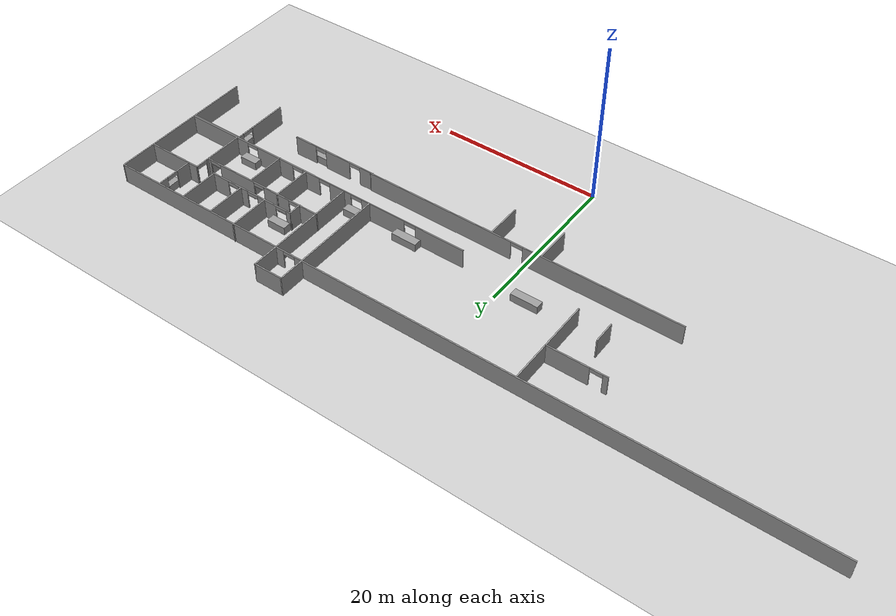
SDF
<sdf version="1.6">
 <world name="default">
  <model name="ground_plane">
   <static>1</static>
   <link name="link">
    <collision name="collision">
     <geometry><plane><normal>0 0 1</normal><size>100 100</size></plane></geometry>
     <surface><friction><ode><mu>100</mu><mu2>50</mu2></ode></friction></surface>
    </collision>
    <visual name="visual">
     <cast_shadows>0</cast_shadows>
     <geometry><plane><normal>0 0 1</normal><size>100 100</size></plane></geometry>
     <material>
      <script><uri>file://media/materials/scripts/gazebo.material</uri><name>Gazebo/Grey</name></script>
     </material>
    </visual>
   </link>
  </model>
  <model name="aule_N">
   <pose>0.1887 -1.4289 0 0 -0 0</pose>
   <link name="Wall_103">
    <pose>26.3919 15.3997 0 0 -0 3.14159</pose>
    <visual name="Wall_103_Visual_0">
     <pose>-4.01282 0 1.25 0 -0 0</pose>
     <geometry><box><size>2.97436 0.15 2.5</size></box></geometry>
     <material>
      <script><uri>file://media/materials/scripts/gazebo.material</uri><name>Gazebo/Grey</name></script>
      <ambient>1 1 1 1</ambient>
     </material>
    </visual>
    <collision name="Wall_103_Collision_0">
     <geometry><box><size>2.97436 0.15 2.5</size></box></geometry>
     <pose>-4.01282 0 1.25 0 -0 0</pose>
    </collision>
    <visual name="Wall_103_Visual_1">
     <pose>0.712222 0 1.25 0 -0 0</pose>
     <geometry><box><size>3.47573 0.15 2.5</size></box></geometry>
     <material>
      <script><uri>file://media/materials/scripts/gazebo.material</uri><name>Gazebo/Grey</name></script>
      <ambient>1 1 1 1</ambient>
     </material>
    </visual>
    <collision name="Wall_103_Collision_1">
     <geometry><box><size>3.47573 0.15 2.5</size></box></geometry>
     <pose>0.712222 0 1.25 0 -0 0</pose>
    </collision>
    <visual name="Wall_103_Visual_2">
     <pose>4.72504 0 1.25 0 -0 0</pose>
     <geometry><box><size>1.54991 0.15 2.5</size></box></geometry>
     <material>
      <script><uri>file://media/materials/scripts/gazebo.material</uri><name>Gazebo/Grey</name></script>
      <ambient>1 1 1 1</ambient>
     </material>
    </visual>
    <collision name="Wall_103_Collision_2">
     <geometry><box><size>1.54991 0.15 2.5</size></box></geometry>
     <pose>4.72504 0 1.25 0 -0 0</pose>
    </collision>
    <visual name="Wall_103_Visual_3">
     <pose>-1.77564 0 2.25 0 -0 0</pose>
     <geometry><box><size>1.5 0.15 0.5</size></box></geometry>
     <material>
      <script><uri>file://media/materials/scripts/gazebo.material</uri><name>Gazebo/Grey</name></script>
      <ambient>1 1 1 1</ambient>
     </material>
    </visual>
    <collision name="Wall_103_Collision_3">
     <geometry><box><size>1.5 0.15 0.5</size></box></geometry>
     <pose>-1.77564 0 2.25 0 -0 0</pose>
    </collision>
    <visual name="Wall_103_Visual_4">
     <pose>3.20009 0 2.25 0 -0 0</pose>
     <geometry><box><size>1.5 0.15 0.5</size></box></geometry>
     <material>
      <script><uri>file://media/materials/scripts/gazebo.material</uri><name>Gazebo/Grey</name></script>
      <ambient>1 1 1 1</ambient>
     </material>
    </visual>
    <collision name="Wall_103_Collision_4">
     <geometry><box><size>1.5 0.15 0.5</size></box></geometry>
     <pose>3.20009 0 2.25 0 -0 0</pose>
    </collision>
   </link>
   <link name="Wall_104">
    <collision name="Wall_104_Collision">
     <geometry><box><size>0.5 0.15 2.5</size></box></geometry>
     <pose>0 0 1.25 0 -0 0</pose>
    </collision>
    <visual name="Wall_104_Visual">
     <pose>0 0 1.25 0 -0 0</pose>
     <geometry><box><size>0.5 0.15 2.5</size></box></geometry>
     <material>
      <script><uri>file://media/materials/scripts/gazebo.material</uri><name>Gazebo/Grey</name></script>
      <ambient>1 1 1 1</ambient>
     </material>
    </visual>
    <pose>20.7919 15.3997 0 0 -0 3.14159</pose>
   </link>
   <link name="Wall_119">
    <pose>24.6226 19.6001 0 0 -0 0</pose>
    <visual name="Wall_119_Visual_0">
     <pose>-16.4435 0 1.25 0 -0 0</pose>
     <geometry><box><size>6.36296 0.15 2.5</size></box></geometry>
     <material>
      <script><uri>file://media/materials/scripts/gazebo.material</uri><name>Gazebo/Grey</name></script>
      <ambient>1 1 1 1</ambient>
     </material>
    </visual>
    <collision name="Wall_119_Collision_0">
     <geometry><box><size>6.36296 0.15 2.5</size></box></geometry>
     <pose>-16.4435 0 1.25 0 -0 0</pose>
    </collision>
    <visual name="Wall_119_Visual_1">
     <pose>-8.80227 0 1.25 0 -0 0</pose>
     <geometry><box><size>5.91956 0.15 2.5</size></box></geometry>
     <material>
      <script><uri>file://media/materials/scripts/gazebo.material</uri><name>Gazebo/Grey</name></script>
      <ambient>1 1 1 1</ambient>
     </material>
    </visual>
    <collision name="Wall_119_Collision_1">
     <geometry><box><size>5.91956 0.15 2.5</size></box></geometry>
     <pose>-8.80227 0 1.25 0 -0 0</pose>
    </collision>
    <visual name="Wall_119_Visual_2">
     <pose>-2.80072 0 1.25 0 -0 0</pose>
     <geometry><box><size>3.08352 0.15 2.5</size></box></geometry>
     <material>
      <script><uri>file://media/materials/scripts/gazebo.material</uri><name>Gazebo/Grey</name></script>
      <ambient>1 1 1 1</ambient>
     </material>
    </visual>
    <collision name="Wall_119_Collision_2">
     <geometry><box><size>3.08352 0.15 2.5</size></box></geometry>
     <pose>-2.80072 0 1.25 0 -0 0</pose>
    </collision>
    <visual name="Wall_119_Visual_3">
     <pose>1.4683 0 1.25 0 -0 0</pose>
     <geometry><box><size>2.45453 0.15 2.5</size></box></geometry>
     <material>
      <script><uri>file://media/materials/scripts/gazebo.material</uri><name>Gazebo/Grey</name></script>
      <ambient>1 1 1 1</ambient>
     </material>
    </visual>
    <collision name="Wall_119_Collision_3">
     <geometry><box><size>2.45453 0.15 2.5</size></box></geometry>
     <pose>1.4683 0 1.25 0 -0 0</pose>
    </collision>
    <visual name="Wall_119_Visual_4">
     <pose>6.88834 0 1.25 0 -0 0</pose>
     <geometry><box><size>5.38554 0.15 2.5</size></box></geometry>
     <material>
      <script><uri>file://media/materials/scripts/gazebo.material</uri><name>Gazebo/Grey</name></script>
      <ambient>1 1 1 1</ambient>
     </material>
    </visual>
    <collision name="Wall_119_Collision_4">
     <geometry><box><size>5.38554 0.15 2.5</size></box></geometry>
     <pose>6.88834 0 1.25 0 -0 0</pose>
    </collision>
    <visual name="Wall_119_Visual_5">
     <pose>15.3531 0 1.25 0 -0 0</pose>
     <geometry><box><size>8.54389 0.15 2.5</size></box></geometry>
     <material>
      <script><uri>file://media/materials/scripts/gazebo.material</uri><name>Gazebo/Grey</name></script>
      <ambient>1 1 1 1</ambient>
     </material>
    </visual>
    <collision name="Wall_119_Collision_5">
     <geometry><box><size>8.54389 0.15 2.5</size></box></geometry>
     <pose>15.3531 0 1.25 0 -0 0</pose>
    </collision>
    <visual name="Wall_119_Visual_6">
     <pose>-12.512 0 2.25 0 -0 0</pose>
     <geometry><box><size>1.5 0.15 0.5</size></box></geometry>
     <material>
      <script><uri>file://media/materials/scripts/gazebo.material</uri><name>Gazebo/Grey</name></script>
      <ambient>1 1 1 1</ambient>
     </material>
    </visual>
    <collision name="Wall_119_Collision_6">
     <geometry><box><size>1.5 0.15 0.5</size></box></geometry>
     <pose>-12.512 0 2.25 0 -0 0</pose>
    </collision>
    <visual name="Wall_119_Visual_7">
     <pose>-5.09248 0 2.25 0 -0 0</pose>
     <geometry><box><size>1.5 0.15 0.5</size></box></geometry>
     <material>
      <script><uri>file://media/materials/scripts/gazebo.material</uri><name>Gazebo/Grey</name></script>
      <ambient>1 1 1 1</ambient>
     </material>
    </visual>
    <collision name="Wall_119_Collision_7">
     <geometry><box><size>1.5 0.15 0.5</size></box></geometry>
     <pose>-5.09248 0 2.25 0 -0 0</pose>
    </collision>
    <visual name="Wall_119_Visual_8">
     <pose>-0.508963 0 2.25 0 -0 0</pose>
     <geometry><box><size>1.5 0.15 0.5</size></box></geometry>
     <material>
      <script><uri>file://media/materials/scripts/gazebo.material</uri><name>Gazebo/Grey</name></script>
      <ambient>1 1 1 1</ambient>
     </material>
    </visual>
    <collision name="Wall_119_Collision_8">
     <geometry><box><size>1.5 0.15 0.5</size></box></geometry>
     <pose>-0.508963 0 2.25 0 -0 0</pose>
    </collision>
    <visual name="Wall_119_Visual_9">
     <pose>3.44557 0 2.25 0 -0 0</pose>
     <geometry><box><size>1.5 0.15 0.5</size></box></geometry>
     <material>
      <script><uri>file://media/materials/scripts/gazebo.material</uri><name>Gazebo/Grey</name></script>
      <ambient>1 1 1 1</ambient>
     </material>
    </visual>
    <collision name="Wall_119_Collision_9">
     <geometry><box><size>1.5 0.15 0.5</size></box></geometry>
     <pose>3.44557 0 2.25 0 -0 0</pose>
    </collision>
    <visual name="Wall_119_Visual_10">
     <pose>10.3311 0 2.25 0 -0 0</pose>
     <geometry><box><size>1.5 0.15 0.5</size></box></geometry>
     <material>
      <script><uri>file://media/materials/scripts/gazebo.material</uri><name>Gazebo/Grey</name></script>
      <ambient>1 1 1 1</ambient>
     </material>
    </visual>
    <collision name="Wall_119_Collision_10">
     <geometry><box><size>1.5 0.15 0.5</size></box></geometry>
     <pose>10.3311 0 2.25 0 -0 0</pose>
    </collision>
   </link>
   <link name="Wall_133">
    <collision name="Wall_133_Collision">
     <geometry><box><size>2.75 0.15 2.5</size></box></geometry>
     <pose>0 0 1.25 0 -0 0</pose>
    </collision>
    <visual name="Wall_133_Visual">
     <pose>0 0 1.25 0 -0 0</pose>
     <geometry><box><size>2.75 0.15 2.5</size></box></geometry>
     <material>
      <script><uri>file://media/materials/scripts/gazebo.material</uri><name>Gazebo/Grey</name></script>
      <ambient>1 1 1 1</ambient>
     </material>
    </visual>
    <pose>-13.0958 20.8964 0 0 0 -1.5708</pose>
   </link>
   <link name="Wall_135">
    <pose>-12.9035 25.7612 0 0 -0 0</pose>
    <visual name="Wall_135_Visual_0">
     <pose>-3.3201 0 1.25 0 -0 0</pose>
     <geometry><box><size>0.60979 0.15 2.5</size></box></geometry>
     <material>
      <script><uri>file://media/materials/scripts/gazebo.material</uri><name>Gazebo/Grey</name></script>
      <ambient>1 1 1 1</ambient>
     </material>
    </visual>
    <collision name="Wall_135_Collision_0">
     <geometry><box><size>0.60979 0.15 2.5</size></box></geometry>
     <pose>-3.3201 0 1.25 0 -0 0</pose>
    </collision>
    <visual name="Wall_135_Visual_1">
     <pose>1.05489 0 1.25 0 -0 0</pose>
     <geometry><box><size>5.14021 0.15 2.5</size></box></geometry>
     <material>
      <script><uri>file://media/materials/scripts/gazebo.material</uri><name>Gazebo/Grey</name></script>
      <ambient>1 1 1 1</ambient>
     </material>
    </visual>
    <collision name="Wall_135_Collision_1">
     <geometry><box><size>5.14021 0.15 2.5</size></box></geometry>
     <pose>1.05489 0 1.25 0 -0 0</pose>
    </collision>
    <visual name="Wall_135_Visual_2">
     <pose>-2.26521 0 2.25 0 -0 0</pose>
     <geometry><box><size>1.5 0.15 0.5</size></box></geometry>
     <material>
      <script><uri>file://media/materials/scripts/gazebo.material</uri><name>Gazebo/Grey</name></script>
      <ambient>1 1 1 1</ambient>
     </material>
    </visual>
    <collision name="Wall_135_Collision_2">
     <geometry><box><size>1.5 0.15 0.5</size></box></geometry>
     <pose>-2.26521 0 2.25 0 -0 0</pose>
    </collision>
   </link>
   <link name="Wall_136">
    <collision name="Wall_136_Collision">
     <geometry><box><size>5.25 0.15 2.5</size></box></geometry>
     <pose>0 0 1.25 0 -0 0</pose>
    </collision>
    <visual name="Wall_136_Visual">
     <pose>0 0 1.25 0 -0 0</pose>
     <geometry><box><size>5.25 0.15 2.5</size></box></geometry>
     <material>
      <script><uri>file://media/materials/scripts/gazebo.material</uri><name>Gazebo/Grey</name></script>
      <ambient>1 1 1 1</ambient>
     </material>
    </visual>
    <pose>-9.35351 28.3112 0 0 -0 1.5708</pose>
   </link>
   <link name="Wall_138">
    <collision name="Wall_138_Collision">
     <geometry><box><size>6.25 0.15 2.5</size></box></geometry>
     <pose>0 0 1.25 0 -0 0</pose>
    </collision>
    <visual name="Wall_138_Visual">
     <pose>0 0 1.25 0 -0 0</pose>
     <geometry><box><size>6.25 0.15 2.5</size></box></geometry>
     <material>
      <script><uri>file://media/materials/scripts/gazebo.material</uri><name>Gazebo/Grey</name></script>
      <ambient>1 1 1 1</ambient>
     </material>
    </visual>
    <pose>-9.35351 22.7112 0 0 0 -1.5708</pose>
   </link>
   <link name="Wall_142">
    <collision name="Wall_142_Collision">
     <geometry><box><size>14.75 0.15 2.5</size></box></geometry>
     <pose>0 0 1.25 0 -0 0</pose>
    </collision>
    <visual name="Wall_142_Visual">
     <pose>0 0 1.25 0 -0 0</pose>
     <geometry><box><size>14.75 0.15 2.5</size></box></geometry>
     <material>
      <script><uri>file://media/materials/scripts/gazebo.material</uri><name>Gazebo/Grey</name></script>
      <ambient>1 1 1 1</ambient>
     </material>
    </visual>
    <pose>17.6842 26.9006 0 0 -0 1.5708</pose>
   </link>
   <link name="Wall_143">
    <collision name="Wall_143_Collision">
     <geometry><box><size>3.75 0.15 2.5</size></box></geometry>
     <pose>0 0 1.25 0 -0 0</pose>
    </collision>
    <visual name="Wall_143_Visual">
     <pose>0 0 1.25 0 -0 0</pose>
     <geometry><box><size>3.75 0.15 2.5</size></box></geometry>
     <material>
      <script><uri>file://media/materials/scripts/gazebo.material</uri><name>Gazebo/Grey</name></script>
      <ambient>1 1 1 1</ambient>
     </material>
    </visual>
    <pose>19.4842 34.2006 0 0 -0 0</pose>
   </link>
   <link name="Wall_144">
    <collision name="Wall_144_Collision">
     <geometry><box><size>14.75 0.15 2.5</size></box></geometry>
     <pose>0 0 1.25 0 -0 0</pose>
    </collision>
    <visual name="Wall_144_Visual">
     <pose>0 0 1.25 0 -0 0</pose>
     <geometry><box><size>14.75 0.15 2.5</size></box></geometry>
     <material>
      <script><uri>file://media/materials/scripts/gazebo.material</uri><name>Gazebo/Grey</name></script>
      <ambient>1 1 1 1</ambient>
     </material>
    </visual>
    <pose>21.2842 26.9006 0 0 0 -1.5708</pose>
   </link>
   <link name="Wall_147">
    <collision name="Wall_147_Collision">
     <geometry><box><size>4.5 0.15 2.5</size></box></geometry>
     <pose>0 0 1.25 0 -0 0</pose>
    </collision>
    <visual name="Wall_147_Visual">
     <pose>0 0 1.25 0 -0 0</pose>
     <geometry><box><size>4.5 0.15 2.5</size></box></geometry>
     <material>
      <script><uri>file://media/materials/scripts/gazebo.material</uri><name>Gazebo/Grey</name></script>
      <ambient>1 1 1 1</ambient>
     </material>
    </visual>
    <pose>-2.1259 13.1481 0 0 0 -1.5708</pose>
   </link>
   <link name="Wall_149">
    <collision name="Wall_149_Collision">
     <geometry><box><size>4.5 0.15 2.5</size></box></geometry>
     <pose>0 0 1.25 0 -0 0</pose>
    </collision>
    <visual name="Wall_149_Visual">
     <pose>0 0 1.25 0 -0 0</pose>
     <geometry><box><size>4.5 0.15 2.5</size></box></geometry>
     <material>
      <script><uri>file://media/materials/scripts/gazebo.material</uri><name>Gazebo/Grey</name></script>
      <ambient>1 1 1 1</ambient>
     </material>
    </visual>
    <pose>4.2241 13.1481 0 0 -0 1.5708</pose>
   </link>
   <link name="Wall_151">
    <pose>37.2203 15.8955 0 0 -0 1.5708</pose>
    <visual name="Wall_151_Visual_0">
     <pose>-1.12447 0 1.25 0 -0 0</pose>
     <geometry><box><size>5.00105 0.15 2.5</size></box></geometry>
     <material>
      <script><uri>file://media/materials/scripts/gazebo.material</uri><name>Gazebo/Grey</name></script>
      <ambient>1 1 1 1</ambient>
     </material>
    </visual>
    <collision name="Wall_151_Collision_0">
     <geometry><box><size>5.00105 0.15 2.5</size></box></geometry>
     <pose>-1.12447 0 1.25 0 -0 0</pose>
    </collision>
    <visual name="Wall_151_Visual_1">
     <pose>3.25053 0 1.25 0 -0 0</pose>
     <geometry><box><size>0.748949 0.15 2.5</size></box></geometry>
     <material>
      <script><uri>file://media/materials/scripts/gazebo.material</uri><name>Gazebo/Grey</name></script>
      <ambient>1 1 1 1</ambient>
     </material>
    </visual>
    <collision name="Wall_151_Collision_1">
     <geometry><box><size>0.748949 0.15 2.5</size></box></geometry>
     <pose>3.25053 0 1.25 0 -0 0</pose>
    </collision>
    <visual name="Wall_151_Visual_2">
     <pose>2.12605 0 2.25 0 -0 0</pose>
     <geometry><box><size>1.5 0.15 0.5</size></box></geometry>
     <material>
      <script><uri>file://media/materials/scripts/gazebo.material</uri><name>Gazebo/Grey</name></script>
      <ambient>1 1 1 1</ambient>
     </material>
    </visual>
    <collision name="Wall_151_Collision_2">
     <geometry><box><size>1.5 0.15 0.5</size></box></geometry>
     <pose>2.12605 0 2.25 0 -0 0</pose>
    </collision>
   </link>
   <link name="Wall_152">
    <collision name="Wall_152_Collision">
     <geometry><box><size>7.25 0.15 2.5</size></box></geometry>
     <pose>0 0 1.25 0 -0 0</pose>
    </collision>
    <visual name="Wall_152_Visual">
     <pose>0 0 1.25 0 -0 0</pose>
     <geometry><box><size>7.25 0.15 2.5</size></box></geometry>
     <material>
      <script><uri>file://media/materials/scripts/gazebo.material</uri><name>Gazebo/Grey</name></script>
      <ambient>1 1 1 1</ambient>
     </material>
    </visual>
    <pose>40.7703 19.4455 0 0 -0 0</pose>
   </link>
   <link name="Wall_154">
    <pose>29.3256 24.4418 0 0 -0 0</pose>
    <visual name="Wall_154_Visual_0">
     <pose>-6.88088 0 1.25 0 -0 0</pose>
     <geometry><box><size>2.48824 0.15 2.5</size></box></geometry>
     <material>
      <script><uri>file://media/materials/scripts/gazebo.material</uri><name>Gazebo/Grey</name></script>
      <ambient>1 1 1 1</ambient>
     </material>
    </visual>
    <collision name="Wall_154_Collision_0">
     <geometry><box><size>2.48824 0.15 2.5</size></box></geometry>
     <pose>-6.88088 0 1.25 0 -0 0</pose>
    </collision>
    <visual name="Wall_154_Visual_1">
     <pose>-2.30449 0 1.25 0 -0 0</pose>
     <geometry><box><size>3.66454 0.15 2.5</size></box></geometry>
     <material>
      <script><uri>file://media/materials/scripts/gazebo.material</uri><name>Gazebo/Grey</name></script>
      <ambient>1 1 1 1</ambient>
     </material>
    </visual>
    <collision name="Wall_154_Collision_1">
     <geometry><box><size>3.66454 0.15 2.5</size></box></geometry>
     <pose>-2.30449 0 1.25 0 -0 0</pose>
    </collision>
    <visual name="Wall_154_Visual_2">
     <pose>3.58098 0 1.25 0 -0 0</pose>
     <geometry><box><size>5.10639 0.15 2.5</size></box></geometry>
     <material>
      <script><uri>file://media/materials/scripts/gazebo.material</uri><name>Gazebo/Grey</name></script>
      <ambient>1 1 1 1</ambient>
     </material>
    </visual>
    <collision name="Wall_154_Collision_2">
     <geometry><box><size>5.10639 0.15 2.5</size></box></geometry>
     <pose>3.58098 0 1.25 0 -0 0</pose>
    </collision>
    <visual name="Wall_154_Visual_3">
     <pose>7.87959 0 1.25 0 -0 0</pose>
     <geometry><box><size>0.490824 0.15 2.5</size></box></geometry>
     <material>
      <script><uri>file://media/materials/scripts/gazebo.material</uri><name>Gazebo/Grey</name></script>
      <ambient>1 1 1 1</ambient>
     </material>
    </visual>
    <collision name="Wall_154_Collision_3">
     <geometry><box><size>0.490824 0.15 2.5</size></box></geometry>
     <pose>7.87959 0 1.25 0 -0 0</pose>
    </collision>
    <visual name="Wall_154_Visual_4">
     <pose>-4.88676 0 2.25 0 -0 0</pose>
     <geometry><box><size>1.5 0.15 0.5</size></box></geometry>
     <material>
      <script><uri>file://media/materials/scripts/gazebo.material</uri><name>Gazebo/Grey</name></script>
      <ambient>1 1 1 1</ambient>
     </material>
    </visual>
    <collision name="Wall_154_Collision_4">
     <geometry><box><size>1.5 0.15 0.5</size></box></geometry>
     <pose>-4.88676 0 2.25 0 -0 0</pose>
    </collision>
    <visual name="Wall_154_Visual_5">
     <pose>0.277782 0 2.25 0 -0 0</pose>
     <geometry><box><size>1.5 0.15 0.5</size></box></geometry>
     <material>
      <script><uri>file://media/materials/scripts/gazebo.material</uri><name>Gazebo/Grey</name></script>
      <ambient>1 1 1 1</ambient>
     </material>
    </visual>
    <collision name="Wall_154_Collision_5">
     <geometry><box><size>1.5 0.15 0.5</size></box></geometry>
     <pose>0.277782 0 2.25 0 -0 0</pose>
    </collision>
    <visual name="Wall_154_Visual_6">
     <pose>6.88418 0 2.25 0 -0 0</pose>
     <geometry><box><size>1.5 0.15 0.5</size></box></geometry>
     <material>
      <script><uri>file://media/materials/scripts/gazebo.material</uri><name>Gazebo/Grey</name></script>
      <ambient>1 1 1 1</ambient>
     </material>
    </visual>
    <collision name="Wall_154_Collision_6">
     <geometry><box><size>1.5 0.15 0.5</size></box></geometry>
     <pose>6.88418 0 2.25 0 -0 0</pose>
    </collision>
   </link>
   <link name="Wall_155">
    <collision name="Wall_155_Collision">
     <geometry><box><size>5 0.15 2.5</size></box></geometry>
     <pose>0 0 1.25 0 -0 0</pose>
    </collision>
    <visual name="Wall_155_Visual">
     <pose>0 0 1.25 0 -0 0</pose>
     <geometry><box><size>5 0.15 2.5</size></box></geometry>
     <material>
      <script><uri>file://media/materials/scripts/gazebo.material</uri><name>Gazebo/Grey</name></script>
      <ambient>1 1 1 1</ambient>
     </material>
    </visual>
    <pose>37.3756 22.0168 0 0 0 -1.5708</pose>
   </link>
   <link name="Wall_157">
    <collision name="Wall_157_Collision">
     <geometry><box><size>5 0.15 2.5</size></box></geometry>
     <pose>0 0 1.25 0 -0 0</pose>
    </collision>
    <visual name="Wall_157_Visual">
     <pose>0 0 1.25 0 -0 0</pose>
     <geometry><box><size>5 0.15 2.5</size></box></geometry>
     <material>
      <script><uri>file://media/materials/scripts/gazebo.material</uri><name>Gazebo/Grey</name></script>
      <ambient>1 1 1 1</ambient>
     </material>
    </visual>
    <pose>26.8585 22.0634 0 0 0 -1.5708</pose>
   </link>
   <link name="Wall_159">
    <collision name="Wall_159_Collision">
     <geometry><box><size>5 0.15 2.5</size></box></geometry>
     <pose>0 0 1.25 0 -0 0</pose>
    </collision>
    <visual name="Wall_159_Visual">
     <pose>0 0 1.25 0 -0 0</pose>
     <geometry><box><size>5 0.15 2.5</size></box></geometry>
     <material>
      <script><uri>file://media/materials/scripts/gazebo.material</uri><name>Gazebo/Grey</name></script>
      <ambient>1 1 1 1</ambient>
     </material>
    </visual>
    <pose>30.8596 21.9703 0 0 0 -1.5708</pose>
   </link>
   <link name="Wall_161">
    <pose>37.3756 25.3668 0 0 -0 1.5708</pose>
    <visual name="Wall_161_Visual_0">
     <pose>-0.779213 0 1.25 0 -0 0</pose>
     <geometry><box><size>0.441574 0.15 2.5</size></box></geometry>
     <material>
      <script><uri>file://media/materials/scripts/gazebo.material</uri><name>Gazebo/Grey</name></script>
      <ambient>1 1 1 1</ambient>
     </material>
    </visual>
    <collision name="Wall_161_Collision_0">
     <geometry><box><size>0.441574 0.15 2.5</size></box></geometry>
     <pose>-0.779213 0 1.25 0 -0 0</pose>
    </collision>
    <visual name="Wall_161_Visual_1">
     <pose>0.970787 0 1.25 0 -0 0</pose>
     <geometry><box><size>0.058426 0.15 2.5</size></box></geometry>
     <material>
      <script><uri>file://media/materials/scripts/gazebo.material</uri><name>Gazebo/Grey</name></script>
      <ambient>1 1 1 1</ambient>
     </material>
    </visual>
    <collision name="Wall_161_Collision_1">
     <geometry><box><size>0.058426 0.15 2.5</size></box></geometry>
     <pose>0.970787 0 1.25 0 -0 0</pose>
    </collision>
    <visual name="Wall_161_Visual_2">
     <pose>0.191574 0 2.25 0 -0 0</pose>
     <geometry><box><size>1.5 0.15 0.5</size></box></geometry>
     <material>
      <script><uri>file://media/materials/scripts/gazebo.material</uri><name>Gazebo/Grey</name></script>
      <ambient>1 1 1 1</ambient>
     </material>
    </visual>
    <collision name="Wall_161_Collision_2">
     <geometry><box><size>1.5 0.15 0.5</size></box></geometry>
     <pose>0.191574 0 2.25 0 -0 0</pose>
    </collision>
   </link>
   <link name="Wall_172">
    <collision name="Wall_172_Collision">
     <geometry><box><size>1.75 0.15 2.5</size></box></geometry>
     <pose>0 0 1.25 0 -0 0</pose>
    </collision>
    <visual name="Wall_172_Visual">
     <pose>0 0 1.25 0 -0 0</pose>
     <geometry><box><size>1.75 0.15 2.5</size></box></geometry>
     <material>
      <script><uri>file://media/materials/scripts/gazebo.material</uri><name>Gazebo/Grey</name></script>
      <ambient>1 1 1 1</ambient>
     </material>
    </visual>
    <pose>23.6484 25.1953 0 0 -0 1.5708</pose>
   </link>
   <link name="Wall_173">
    <pose>29.3234 25.9953 0 0 -0 0</pose>
    <visual name="Wall_173_Visual_0">
     <pose>-5.43624 0 1.25 0 -0 0</pose>
     <geometry><box><size>0.627523 0.15 2.5</size></box></geometry>
     <material>
      <script><uri>file://media/materials/scripts/gazebo.material</uri><name>Gazebo/Grey</name></script>
      <ambient>1 1 1 1</ambient>
     </material>
    </visual>
    <collision name="Wall_173_Collision_0">
     <geometry><box><size>0.627523 0.15 2.5</size></box></geometry>
     <pose>-5.43624 0 1.25 0 -0 0</pose>
    </collision>
    <visual name="Wall_173_Visual_1">
     <pose>-2.27883 0 1.25 0 -0 0</pose>
     <geometry><box><size>2.6873 0.15 2.5</size></box></geometry>
     <material>
      <script><uri>file://media/materials/scripts/gazebo.material</uri><name>Gazebo/Grey</name></script>
      <ambient>1 1 1 1</ambient>
     </material>
    </visual>
    <collision name="Wall_173_Collision_1">
     <geometry><box><size>2.6873 0.15 2.5</size></box></geometry>
     <pose>-2.27883 0 1.25 0 -0 0</pose>
    </collision>
    <visual name="Wall_173_Visual_2">
     <pose>1.25706 0 1.25 0 -0 0</pose>
     <geometry><box><size>1.38448 0.15 2.5</size></box></geometry>
     <material>
      <script><uri>file://media/materials/scripts/gazebo.material</uri><name>Gazebo/Grey</name></script>
      <ambient>1 1 1 1</ambient>
     </material>
    </visual>
    <collision name="Wall_173_Collision_2">
     <geometry><box><size>1.38448 0.15 2.5</size></box></geometry>
     <pose>1.25706 0 1.25 0 -0 0</pose>
    </collision>
    <visual name="Wall_173_Visual_3">
     <pose>4.59965 0 1.25 0 -0 0</pose>
     <geometry><box><size>2.3007 0.15 2.5</size></box></geometry>
     <material>
      <script><uri>file://media/materials/scripts/gazebo.material</uri><name>Gazebo/Grey</name></script>
      <ambient>1 1 1 1</ambient>
     </material>
    </visual>
    <collision name="Wall_173_Collision_3">
     <geometry><box><size>2.3007 0.15 2.5</size></box></geometry>
     <pose>4.59965 0 1.25 0 -0 0</pose>
    </collision>
    <visual name="Wall_173_Visual_4">
     <pose>-4.37248 0 2.25 0 -0 0</pose>
     <geometry><box><size>1.5 0.15 0.5</size></box></geometry>
     <material>
      <script><uri>file://media/materials/scripts/gazebo.material</uri><name>Gazebo/Grey</name></script>
      <ambient>1 1 1 1</ambient>
     </material>
    </visual>
    <collision name="Wall_173_Collision_4">
     <geometry><box><size>1.5 0.15 0.5</size></box></geometry>
     <pose>-4.37248 0 2.25 0 -0 0</pose>
    </collision>
    <visual name="Wall_173_Visual_5">
     <pose>-0.185179 0 2.25 0 -0 0</pose>
     <geometry><box><size>1.5 0.15 0.5</size></box></geometry>
     <material>
      <script><uri>file://media/materials/scripts/gazebo.material</uri><name>Gazebo/Grey</name></script>
      <ambient>1 1 1 1</ambient>
     </material>
    </visual>
    <collision name="Wall_173_Collision_5">
     <geometry><box><size>1.5 0.15 0.5</size></box></geometry>
     <pose>-0.185179 0 2.25 0 -0 0</pose>
    </collision>
    <visual name="Wall_173_Visual_6">
     <pose>2.6993 0 2.25 0 -0 0</pose>
     <geometry><box><size>1.5 0.15 0.5</size></box></geometry>
     <material>
      <script><uri>file://media/materials/scripts/gazebo.material</uri><name>Gazebo/Grey</name></script>
      <ambient>1 1 1 1</ambient>
     </material>
    </visual>
    <collision name="Wall_173_Collision_6">
     <geometry><box><size>1.5 0.15 0.5</size></box></geometry>
     <pose>2.6993 0 2.25 0 -0 0</pose>
    </collision>
   </link>
   <link name="Wall_174">
    <collision name="Wall_174_Collision">
     <geometry><box><size>5 0.15 2.5</size></box></geometry>
     <pose>0 0 1.25 0 -0 0</pose>
    </collision>
    <visual name="Wall_174_Visual">
     <pose>0 0 1.25 0 -0 0</pose>
     <geometry><box><size>5 0.15 2.5</size></box></geometry>
     <material>
      <script><uri>file://media/materials/scripts/gazebo.material</uri><name>Gazebo/Grey</name></script>
      <ambient>1 1 1 1</ambient>
     </material>
    </visual>
    <pose>34.9984 28.4203 0 0 -0 1.5708</pose>
   </link>
   <link name="Wall_176">
    <collision name="Wall_176_Collision">
     <geometry><box><size>5.25 0.15 2.5</size></box></geometry>
     <pose>0 0 1.25 0 -0 0</pose>
    </collision>
    <visual name="Wall_176_Visual">
     <pose>0 0 1.25 0 -0 0</pose>
     <geometry><box><size>5.25 0.15 2.5</size></box></geometry>
     <material>
      <script><uri>file://media/materials/scripts/gazebo.material</uri><name>Gazebo/Grey</name></script>
      <ambient>1 1 1 1</ambient>
     </material>
    </visual>
    <pose>27.3703 28.4806 0 0 -0 1.5708</pose>
   </link>
   <link name="Wall_178">
    <collision name="Wall_178_Collision">
     <geometry><box><size>5 0.15 2.5</size></box></geometry>
     <pose>0 0 1.25 0 -0 0</pose>
    </collision>
    <visual name="Wall_178_Visual">
     <pose>0 0 1.25 0 -0 0</pose>
     <geometry><box><size>5 0.15 2.5</size></box></geometry>
     <material>
      <script><uri>file://media/materials/scripts/gazebo.material</uri><name>Gazebo/Grey</name></script>
      <ambient>1 1 1 1</ambient>
     </material>
    </visual>
    <pose>30.8596 28.4952 0 0 -0 1.5708</pose>
   </link>
   <link name="Wall_182">
    <collision name="Wall_182_Collision">
     <geometry><box><size>7 0.15 2.5</size></box></geometry>
     <pose>0 0 1.25 0 -0 0</pose>
    </collision>
    <visual name="Wall_182_Visual">
     <pose>0 0 1.25 0 -0 0</pose>
     <geometry><box><size>7 0.15 2.5</size></box></geometry>
     <material>
      <script><uri>file://media/materials/scripts/gazebo.material</uri><name>Gazebo/Grey</name></script>
      <ambient>1 1 1 1</ambient>
     </material>
    </visual>
    <pose>40.8006 26.2918 0 0 -0 0</pose>
   </link>
   <link name="Wall_184">
    <pose>38.6756 28.6028 0 0 -0 1.5708</pose>
    <visual name="Wall_184_Visual_0">
     <pose>-1.38657 0 1.25 0 -0 0</pose>
     <geometry><box><size>1.97686 0.15 2.5</size></box></geometry>
     <material>
      <script><uri>file://media/materials/scripts/gazebo.material</uri><name>Gazebo/Grey</name></script>
      <ambient>1 1 1 1</ambient>
     </material>
    </visual>
    <collision name="Wall_184_Collision_0">
     <geometry><box><size>1.97686 0.15 2.5</size></box></geometry>
     <pose>-1.38657 0 1.25 0 -0 0</pose>
    </collision>
    <visual name="Wall_184_Visual_1">
     <pose>1.73843 0 1.25 0 -0 0</pose>
     <geometry><box><size>1.27314 0.15 2.5</size></box></geometry>
     <material>
      <script><uri>file://media/materials/scripts/gazebo.material</uri><name>Gazebo/Grey</name></script>
      <ambient>1 1 1 1</ambient>
     </material>
    </visual>
    <collision name="Wall_184_Collision_1">
     <geometry><box><size>1.27314 0.15 2.5</size></box></geometry>
     <pose>1.73843 0 1.25 0 -0 0</pose>
    </collision>
    <visual name="Wall_184_Visual_2">
     <pose>0.351864 0 2.25 0 -0 0</pose>
     <geometry><box><size>1.5 0.15 0.5</size></box></geometry>
     <material>
      <script><uri>file://media/materials/scripts/gazebo.material</uri><name>Gazebo/Grey</name></script>
      <ambient>1 1 1 1</ambient>
     </material>
    </visual>
    <collision name="Wall_184_Collision_2">
     <geometry><box><size>1.5 0.15 0.5</size></box></geometry>
     <pose>0.351864 0 2.25 0 -0 0</pose>
    </collision>
   </link>
   <link name="Wall_41">
    <collision name="Wall_41_Collision">
     <geometry><box><size>18.75 0.15 2.5</size></box></geometry>
     <pose>0 0 1.25 0 -0 0</pose>
    </collision>
    <visual name="Wall_41_Visual">
     <pose>0 0 1.25 0 -0 0</pose>
     <geometry><box><size>18.75 0.15 2.5</size></box></geometry>
     <material>
      <script><uri>file://media/materials/scripts/gazebo.material</uri><name>Gazebo/Grey</name></script>
      <ambient>1 1 1 1</ambient>
     </material>
    </visual>
    <pose>44.3203 21.6455 0 0 -0 1.5708</pose>
   </link>
   <link name="Wall_42">
    <pose>0.270301 30.9455 0 0 -0 3.14159</pose>
    <visual name="Wall_42_Visual_0">
     <pose>-32.0366 0 1.25 0 -0 0</pose>
     <geometry><box><size>24.1768 0.15 2.5</size></box></geometry>
     <material>
      <script><uri>file://media/materials/scripts/gazebo.material</uri><name>Gazebo/Grey</name></script>
      <ambient>1 1 1 1</ambient>
     </material>
    </visual>
    <collision name="Wall_42_Collision_0">
     <geometry><box><size>24.1768 0.15 2.5</size></box></geometry>
     <pose>-32.0366 0 1.25 0 -0 0</pose>
    </collision>
    <visual name="Wall_42_Visual_1">
     <pose>12.8384 0 1.25 0 -0 0</pose>
     <geometry><box><size>62.5732 0.15 2.5</size></box></geometry>
     <material>
      <script><uri>file://media/materials/scripts/gazebo.material</uri><name>Gazebo/Grey</name></script>
      <ambient>1 1 1 1</ambient>
     </material>
    </visual>
    <collision name="Wall_42_Collision_1">
     <geometry><box><size>62.5732 0.15 2.5</size></box></geometry>
     <pose>12.8384 0 1.25 0 -0 0</pose>
    </collision>
    <visual name="Wall_42_Visual_2">
     <pose>-19.1982 0 2.25 0 -0 0</pose>
     <geometry><box><size>1.5 0.15 0.5</size></box></geometry>
     <material>
      <script><uri>file://media/materials/scripts/gazebo.material</uri><name>Gazebo/Grey</name></script>
      <ambient>1 1 1 1</ambient>
     </material>
    </visual>
    <collision name="Wall_42_Collision_2">
     <geometry><box><size>1.5 0.15 0.5</size></box></geometry>
     <pose>-19.1982 0 2.25 0 -0 0</pose>
    </collision>
   </link>
   <link name="Wall_48">
    <pose>0.767861 15.4639 0 0 -0 3.14159</pose>
    <visual name="Wall_48_Visual_0">
     <pose>-10.4634 0 1.25 0 -0 0</pose>
     <geometry><box><size>19.0732 0.15 2.5</size></box></geometry>
     <material>
      <script><uri>file://media/materials/scripts/gazebo.material</uri><name>Gazebo/Grey</name></script>
      <ambient>1 1 1 1</ambient>
     </material>
    </visual>
    <collision name="Wall_48_Collision_0">
     <geometry><box><size>19.0732 0.15 2.5</size></box></geometry>
     <pose>-10.4634 0 1.25 0 -0 0</pose>
    </collision>
    <visual name="Wall_48_Visual_1">
     <pose>10.2866 0 1.25 0 -0 0</pose>
     <geometry><box><size>19.4268 0.15 2.5</size></box></geometry>
     <material>
      <script><uri>file://media/materials/scripts/gazebo.material</uri><name>Gazebo/Grey</name></script>
      <ambient>1 1 1 1</ambient>
     </material>
    </visual>
    <collision name="Wall_48_Collision_1">
     <geometry><box><size>19.4268 0.15 2.5</size></box></geometry>
     <pose>10.2866 0 1.25 0 -0 0</pose>
    </collision>
    <visual name="Wall_48_Visual_2">
     <pose>-0.176821 0 2.25 0 -0 0</pose>
     <geometry><box><size>1.5 0.15 0.5</size></box></geometry>
     <material>
      <script><uri>file://media/materials/scripts/gazebo.material</uri><name>Gazebo/Grey</name></script>
      <ambient>1 1 1 1</ambient>
     </material>
    </visual>
    <collision name="Wall_48_Collision_2">
     <geometry><box><size>1.5 0.15 0.5</size></box></geometry>
     <pose>-0.176821 0 2.25 0 -0 0</pose>
    </collision>
   </link>
   <static>1</static>
  </model>
  <model name="unit_box_0">
   <pose>38.0257 16.5563 0.499975 2.3e-05 -0 -1e-06</pose>
   <link name="link">
    <inertial>
     <mass>1</mass>
     <inertia>
      <ixx>0.166667</ixx>
      <ixy>0</ixy>
      <ixz>0</ixz>
      <iyy>0.166667</iyy>
      <iyz>0</iyz>
      <izz>0.166667</izz>
     </inertia>
    </inertial>
    <collision name="collision"><geometry><box><size>1 2.15831 1</size></box></geometry></collision>
    <visual name="visual">
     <geometry><box><size>1 2.15831 1</size></box></geometry>
     <material>
      <script><name>Gazebo/Grey</name><uri>file://media/materials/scripts/gazebo.material</uri></script>
     </material>
    </visual>
   </link>
  </model>
  <model name="unit_box_1">
   <pose>35.0824 18.7795 0.499972 0 -2.6e-05 4.4e-05</pose>
   <link name="link">
    <inertial>
     <mass>1</mass>
     <inertia>
      <ixx>0.166667</ixx>
      <ixy>0</ixy>
      <ixz>0</ixz>
      <iyy>0.166667</iyy>
      <iyz>0</iyz>
      <izz>0.166667</izz>
     </inertia>
    </inertial>
    <collision name="collision"><geometry><box><size>2.20052 1 1</size></box></geometry></collision>
    <visual name="visual">
     <geometry><box><size>2.20052 1 1</size></box></geometry>
     <material>
      <script><name>Gazebo/Grey</name><uri>file://media/materials/scripts/gazebo.material</uri></script>
     </material>
    </visual>
   </link>
  </model>
  <model name="unit_box_2">
   <pose>39.4997 27.5443 0.499971 -2.6e-05 -0 7e-06</pose>
   <link name="link">
    <inertial>
     <mass>1</mass>
     <inertia>
      <ixx>0.166667</ixx>
      <ixy>0</ixy>
      <ixz>0</ixz>
      <iyy>0.166667</iyy>
      <iyz>0</iyz>
      <izz>0.166667</izz>
     </inertia>
    </inertial>
    <collision name="collision"><geometry><box><size>1 2.20971 1</size></box></geometry></collision>
    <visual name="visual">
     <geometry><box><size>1 2.20971 1</size></box></geometry>
     <material>
      <script><name>Gazebo/Grey</name><uri>file://media/materials/scripts/gazebo.material</uri></script>
     </material>
    </visual>
   </link>
  </model>
  <model name="unit_box_3">
   <pose>25.1074 25.1736 0.5 0 -0 1.4e-05</pose>
   <link name="link">
    <inertial>
     <mass>1</mass>
     <inertia>
      <ixx>0.166667</ixx>
      <ixy>0</ixy>
      <ixz>0</ixz>
      <iyy>0.166667</iyy>
      <iyz>0</iyz>
      <izz>0.166667</izz>
     </inertia>
    </inertial>
    <collision name="collision"><geometry><box><size>2.40598 1 1</size></box></geometry></collision>
    <visual name="visual">
     <geometry><box><size>2.40598 1 1</size></box></geometry>
     <material>
      <script><name>Gazebo/Grey</name><uri>file://media/materials/scripts/gazebo.material</uri></script>
     </material>
    </visual>
   </link>
  </model>
  <model name="unit_box_4">
   <pose>19.6974 18.7811 0.499999 2e-06 -0 1.2e-05</pose>
   <link name="link">
    <inertial>
     <mass>1</mass>
     <inertia>
      <ixx>0.166667</ixx>
      <ixy>0</ixy>
      <ixz>0</ixz>
      <iyy>0.166667</iyy>
      <iyz>0</iyz>
      <izz>0.166667</izz>
     </inertia>
    </inertial>
    <collision name="collision"><geometry><box><size>2.2596 1 1</size></box></geometry></collision>
    <visual name="visual">
     <geometry><box><size>2.2596 1 1</size></box></geometry>
     <material>
      <script><name>Gazebo/Grey</name><uri>file://media/materials/scripts/gazebo.material</uri></script>
     </material>
    </visual>
   </link>
  </model>
  <model name="unit_box_5">
   <pose>12.3598 18.7919 0.5 1e-06 -0 -1.1e-05</pose>
   <link name="link">
    <inertial>
     <mass>1</mass>
     <inertia>
      <ixx>0.166667</ixx>
      <ixy>0</ixy>
      <ixz>0</ixz>
      <iyy>0.166667</iyy>
      <iyz>0</iyz>
      <izz>0.166667</izz>
     </inertia>
    </inertial>
    <collision name="collision"><geometry><box><size>3.20171 1 1</size></box></geometry></collision>
    <visual name="visual">
     <geometry><box><size>3.20171 1 1</size></box></geometry>
     <material>
      <script><name>Gazebo/Grey</name><uri>file://media/materials/scripts/gazebo.material</uri></script>
     </material>
    </visual>
   </link>
  </model>
  <model name="unit_box_6">
   <pose>-3.30649 18.7986 0.499686 0 -0.000187 6e-06</pose>
   <link name="link">
    <inertial>
     <mass>1</mass>
     <inertia>
      <ixx>0.166667</ixx>
      <ixy>0</ixy>
      <ixz>0</ixz>
      <iyy>0.166667</iyy>
      <iyz>0</iyz>
      <izz>0.166667</izz>
     </inertia>
    </inertial>
    <collision name="collision"><geometry><box><size>3.35539 1 1</size></box></geometry></collision>
    <visual name="visual">
     <geometry><box><size>3.35539 1 1</size></box></geometry>
     <material>
      <script><name>Gazebo/Grey</name><uri>file://media/materials/scripts/gazebo.material</uri></script>
     </material>
    </visual>
   </link>
  </model>
  <model name="unit_box_10">
   <pose>28.4951 13.3458 0.5 0 -0 0</pose>
   <link name="link">
    <inertial>
     <mass>1</mass>
     <inertia>
      <ixx>0.166667</ixx>
      <ixy>0</ixy>
      <ixz>0</ixz>
      <iyy>0.166667</iyy>
      <iyz>0</iyz>
      <izz>0.166667</izz>
     </inertia>
    </inertial>
    <collision name="collision"><geometry><box><size>2.58506 1 1</size></box></geometry></collision>
    <visual name="visual">
     <geometry><box><size>2.58506 1 1</size></box></geometry>
     <material>
      <script><name>Gazebo/Grey</name><uri>file://media/materials/scripts/gazebo.material</uri></script>
     </material>
    </visual>
   </link>
  </model>
 </world>
</sdf>
